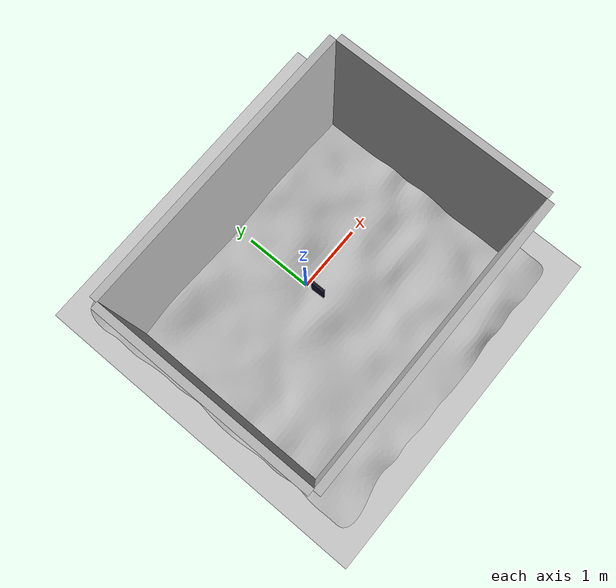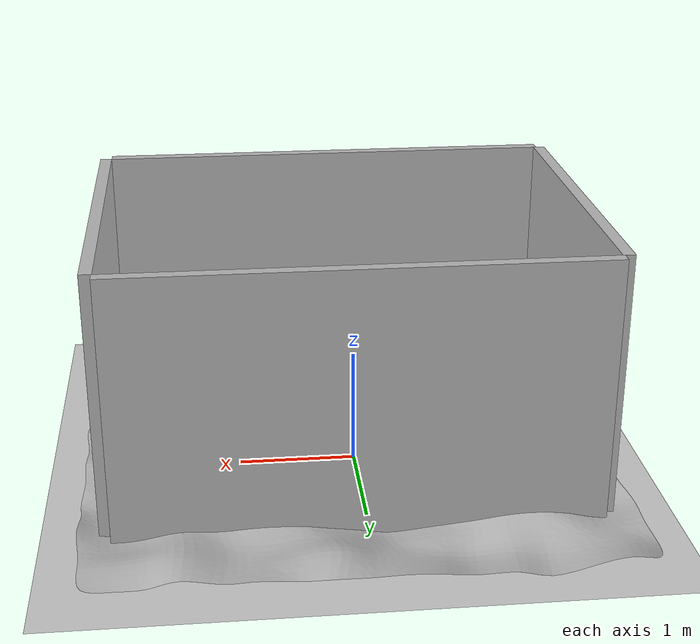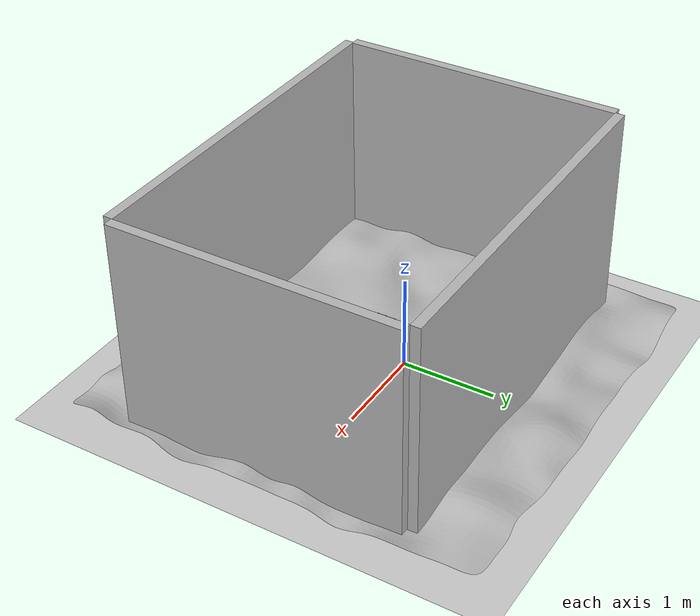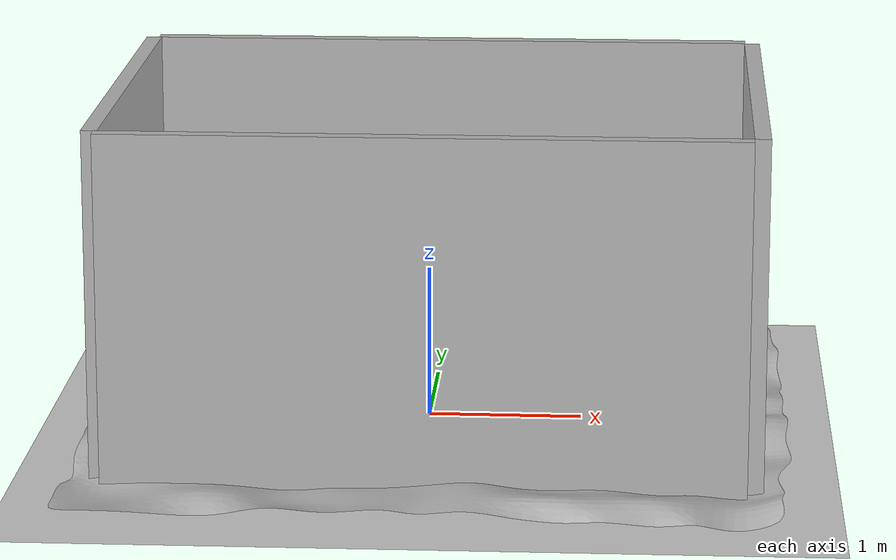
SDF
<sdf version="1.6">
 <world name="default">
  <model name="ground_plane">
   <static>1</static>
   <link name="link">
    <collision name="collision">
     <geometry><plane><normal>0 0 1</normal><size>100 100</size></plane></geometry>
     <surface><friction><ode><mu>80</mu><mu2>50</mu2></ode></friction></surface>
    </collision>
    <visual name="visual">
     <cast_shadows>0</cast_shadows>
     <geometry><plane><normal>0 0 1</normal><size>100 100</size></plane></geometry>
     <material>
      <script><uri>file://media/materials/scripts/gazebo.material</uri><name>Gazebo/Grey</name></script>
     </material>
    </visual>
   </link>
  </model>
  <gravity>0 0 -9.8</gravity>
  <magnetic_field>6e-06 2.3e-05 -4.2e-05</magnetic_field>
  <atmosphere type="adiabatic"/>
  <physics name="default_physics" default="0" type="ode">
   <ode>
    <solver>
     <type>quick</type>
     <min_step_size>0.0001></min_step_size>
     <iters>5</iters>
     <thread_position_correction>1</thread_position_correction>
     <island_threads>6</island_threads>
    </solver>
   </ode>
   <max_step_size>0.005</max_step_size>
   <real_time_factor>1000</real_time_factor>
   <real_time_update_rate>20000</real_time_update_rate>
  </physics>
  <scene>
   <ambient>0 0 0 1</ambient>
   <background>0 0 0 1</background>
   <grid>0</grid>
   <sky><time>13</time><sunrise>12</sunrise><sunset>12</sunset><clouds><humidity>0</humidity></clouds></sky>
   <shadows>1</shadows>
  </scene>
  <spherical_coordinates>
   <surface_model>EARTH_WGS84</surface_model>
   <latitude_deg>0</latitude_deg>
   <longitude_deg>0</longitude_deg>
   <elevation>0</elevation>
   <heading_deg>0</heading_deg>
  </spherical_coordinates>
  <model name="backwall">
   <pose>-1.96385 -0.26563 1.143 0 -0 0</pose>
   <static>1</static>
   <link name="link">
    <inertial>
     <mass>10</mass>
     <inertia><ixx>11.8074</ixx><ixy>0</ixy><ixz>0</ixz><iyy>4.34598</iyy><iyz>0</iyz><izz>7.47857</izz></inertia>
    </inertial>
    <collision name="collision"><geometry><box><size>0.1016 3 2.286</size></box></geometry></collision>
    <visual name="visual">
     <geometry><box><size>0.1016 3 2.286</size></box></geometry>
     <material>
      <script>
       <uri>model://backwall/materials/scripts</uri>
       <uri>model://backwall/materials/textures</uri>
       <name>backwall/wall</name>
      </script>
     </material>
    </visual>
   </link>
  </model>
  <model name="backwall_0">
   <pose>2.1151 -0.270631 1.143 0 -0 0</pose>
   <static>1</static>
   <link name="link">
    <inertial>
     <mass>10</mass>
     <inertia><ixx>11.8074</ixx><ixy>0</ixy><ixz>0</ixz><iyy>4.34598</iyy><iyz>0</iyz><izz>7.47857</izz></inertia>
    </inertial>
    <collision name="collision"><geometry><box><size>0.1016 3 2.286</size></box></geometry></collision>
    <visual name="visual">
     <geometry><box><size>0.1016 3 2.286</size></box></geometry>
     <material>
      <script>
       <uri>model://backwall/materials/scripts</uri>
       <uri>model://backwall/materials/textures</uri>
       <name>backwall/wall</name>
      </script>
     </material>
    </visual>
   </link>
  </model>
  <model name="sidewall">
   <pose>0.063459 -1.81178 1.143 0 -0 1.5708</pose>
   <static>1</static>
   <link name="link">
    <inertial>
     <mass>10</mass>
     <inertia><ixx>17.6174</ixx><ixy>0</ixy><ixz>0</ixz><iyy>4.34598</iyy><iyz>0</iyz><izz>13.2886</izz></inertia>
    </inertial>
    <collision name="collision"><geometry><box><size>0.1016 4 2.286</size></box></geometry></collision>
    <visual name="visual">
     <geometry><box><size>0.1016 4 2.286</size></box></geometry>
     <material>
      <script>
       <uri>model://sidewall/materials/scripts</uri>
       <uri>model://sidewall/materials/textures</uri>
       <name>sidewall/wall</name>
      </script>
     </material>
    </visual>
   </link>
  </model>
  <model name="sidewall_clone">
   <pose>0.070218 1.28129 1.143 0 -0 1.5708</pose>
   <static>1</static>
   <link name="link">
    <inertial>
     <mass>10</mass>
     <inertia><ixx>17.6174</ixx><ixy>0</ixy><ixz>0</ixz><iyy>4.34598</iyy><iyz>0</iyz><izz>13.2886</izz></inertia>
    </inertial>
    <collision name="collision"><geometry><box><size>0.1016 4 2.286</size></box></geometry></collision>
    <visual name="visual">
     <geometry><box><size>0.1016 4 2.286</size></box></geometry>
     <material>
      <script>
       <uri>model://sidewall/materials/scripts</uri>
       <uri>model://sidewall/materials/textures</uri>
       <name>sidewall/wall</name>
      </script>
     </material>
    </visual>
   </link>
  </model>
  <model name="monolith">
   <pose>0.010881 -0.203404 0.283819 0 -0 0</pose>
   <static>1</static>
   <link name="link">
    <inertial>
     <mass>2</mass>
     <inertia><ixx>0.0424</ixx><ixy>0</ixy><ixz>0</ixz><iyy>0.0348</iyy><iyz>0</iyz><izz>0.007841</izz></inertia>
    </inertial>
    <collision name="collision"><geometry><box><size>0.0254 0.2159 0.4572</size></box></geometry></collision>
    <visual name="visual">
     <geometry><box><size>0.0254 0.2159 0.4572</size></box></geometry>
     <material>
      <ambient>0.1 0.1 0.1 1</ambient>
      <diffuse>0.1 0.1 0.2 1</diffuse>
      <specular>0 0 0 0</specular>
      <emissive>0 0 0 1</emissive>
     </material>
    </visual>
   </link>
  </model>
  <model name="gymbox">
   <static>1</static>
   <link name="link">
    <inertial>
     <mass>1</mass>
     <inertia><ixx>0.001</ixx><ixy>0</ixy><ixz>0</ixz><iyy>0.001</iyy><iyz>0</iyz><izz>0.001</izz></inertia>
    </inertial>
    <collision name="collision">
     <geometry><mesh><uri>model://gymbox/meshes/model.dae</uri><scale>1 1 1</scale></mesh></geometry>
     <surface><friction><ode><mu>0.6</mu><mu2>0.6</mu2></ode></friction></surface>
    </collision>
    <visual name="visual">
     <geometry><mesh><uri>model://gymbox/meshes/model.dae</uri><scale>1 1 1</scale></mesh></geometry>
    </visual>
   </link>
   <pose>-2.23819 1.20042 0 0 -0 0</pose>
  </model>
  <light name="user_point_light_0" type="point">
   <pose>-0.510257 -0.317419 1 0 -0 0</pose>
   <diffuse>0.5 0.5 0.5 1</diffuse>
   <specular>0.1 0.1 0.1 1</specular>
   <attenuation>
    <range>20</range>
    <constant>0.5</constant>
    <linear>0.01</linear>
    <quadratic>0.001</quadratic>
   </attenuation>
   <cast_shadows>0</cast_shadows>
   <direction>0 0 -1</direction>
  </light>
 </world>
</sdf>
